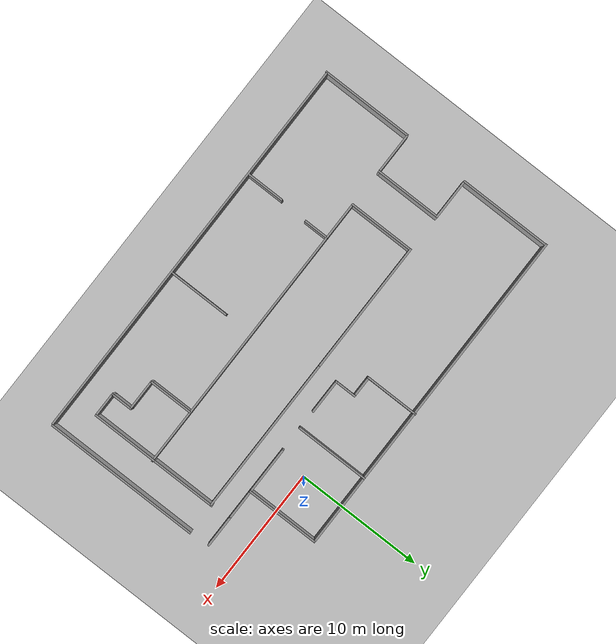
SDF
<sdf version="1.7">
 <world name="default">
  <light name="sun" type="directional">
   <pose>0 0 10 0 -0 0</pose>
   <diffuse>0.8 0.8 0.8 1</diffuse>
   <specular>0.2 0.2 0.2 1</specular>
   <attenuation>
    <range>1000</range>
    <constant>0.9</constant>
    <linear>0.01</linear>
    <quadratic>0.001</quadratic>
   </attenuation>
   <direction>-0.5 0.1 -0.9</direction>
   <spot><inner_angle>0</inner_angle><outer_angle>0</outer_angle><falloff>0</falloff></spot>
  </light>
  <model name="ground_plane">
   <static>1</static>
   <link name="link">
    <collision name="collision">
     <geometry><plane><normal>0 0 1</normal><size>100 100</size></plane></geometry>
     <surface>
      <contact><collide_bitmask>65535</collide_bitmask></contact>
      <friction><ode><mu>100</mu><mu2>50</mu2></ode></friction>
     </surface>
    </collision>
    <visual name="visual">
     <cast_shadows>0</cast_shadows>
     <geometry><plane><normal>0 0 1</normal><size>100 100</size></plane></geometry>
     <material>
      <script><uri>file://media/materials/scripts/gazebo.material</uri><name>Gazebo/Grey</name></script>
     </material>
    </visual>
   </link>
  </model>
  <gravity>0 0 -9.8</gravity>
  <magnetic_field>6e-06 2.3e-05 -4.2e-05</magnetic_field>
  <atmosphere type="adiabatic"/>
  <physics type="ode">
   <max_step_size>0.001</max_step_size>
   <real_time_factor>1</real_time_factor>
   <real_time_update_rate>1000</real_time_update_rate>
  </physics>
  <scene><ambient>0.4 0.4 0.4 1</ambient><background>0.7 0.7 0.7 1</background><shadows>1</shadows></scene>
  <spherical_coordinates>
   <surface_model>EARTH_WGS84</surface_model>
   <latitude_deg>0</latitude_deg>
   <longitude_deg>0</longitude_deg>
   <elevation>0</elevation>
   <heading_deg>0</heading_deg>
  </spherical_coordinates>
  <model name="lab_arvc">
   <pose>-7.70789 -5.91289 0 0 -0 0</pose>
   <link name="Wall_1">
    <collision name="Wall_1_Collision">
     <geometry><box><size>5.74332 0.15 2.5</size></box></geometry>
     <pose>0 0 1.25 0 -0 0</pose>
    </collision>
    <visual name="Wall_1_Visual">
     <pose>0 0 1.25 0 -0 0</pose>
     <geometry><box><size>5.74332 0.15 2.5</size></box></geometry>
     <material>
      <script><uri>file://media/materials/scripts/gazebo.material</uri><name>Gazebo/Grey</name></script>
      <ambient>1 1 1 1</ambient>
     </material>
     <meta><layer>0</layer></meta>
    </visual>
    <pose>10.6952 6.36477 0 0 -0 -1.5708</pose>
   </link>
   <link name="Wall_11">
    <collision name="Wall_11_Collision">
     <geometry><box><size>12.25 0.15 2.5</size></box></geometry>
     <pose>0 0 1.25 0 -0 0</pose>
    </collision>
    <visual name="Wall_11_Visual">
     <pose>0 0 1.25 0 -0 0</pose>
     <geometry><box><size>12.25 0.15 2.5</size></box></geometry>
     <material>
      <script><uri>file://media/materials/scripts/gazebo.material</uri><name>Gazebo/Grey</name></script>
      <ambient>1 1 1 1</ambient>
     </material>
     <meta><layer>0</layer></meta>
    </visual>
    <pose>6.99516 1.9681 0 0 -0 3.14159</pose>
   </link>
   <link name="Wall_110">
    <collision name="Wall_110_Collision">
     <geometry><box><size>2 0.15 2.5</size></box></geometry>
     <pose>0 0 1.25 0 -0 0</pose>
    </collision>
    <visual name="Wall_110_Visual">
     <pose>0 0 1.25 0 -0 0</pose>
     <geometry><box><size>2 0.15 2.5</size></box></geometry>
     <material>
      <script><uri>file://media/materials/scripts/gazebo.material</uri><name>Gazebo/Grey</name></script>
      <ambient>1 1 1 1</ambient>
     </material>
     <meta><layer>0</layer></meta>
    </visual>
    <pose>12.2028 -8.16851 0 0 -0 3.14159</pose>
   </link>
   <link name="Wall_111">
    <collision name="Wall_111_Collision">
     <geometry><box><size>1.75 0.15 2.5</size></box></geometry>
     <pose>0 0 1.25 0 -0 0</pose>
    </collision>
    <visual name="Wall_111_Visual">
     <pose>0 0 1.25 0 -0 0</pose>
     <geometry><box><size>1.75 0.15 2.5</size></box></geometry>
     <material>
      <script><uri>file://media/materials/scripts/gazebo.material</uri><name>Gazebo/Grey</name></script>
      <ambient>1 1 1 1</ambient>
     </material>
     <meta><layer>0</layer></meta>
    </visual>
    <pose>11.2778 -7.36852 0 0 -0 1.5708</pose>
   </link>
   <link name="Wall_112">
    <collision name="Wall_112_Collision">
     <geometry><box><size>2.5 0.15 2.5</size></box></geometry>
     <pose>0 0 1.25 0 -0 0</pose>
    </collision>
    <visual name="Wall_112_Visual">
     <pose>0 0 1.25 0 -0 0</pose>
     <geometry><box><size>2.5 0.15 2.5</size></box></geometry>
     <material>
      <script><uri>file://media/materials/scripts/gazebo.material</uri><name>Gazebo/Grey</name></script>
      <ambient>1 1 1 1</ambient>
     </material>
     <meta><layer>0</layer></meta>
    </visual>
    <pose>10.1028 -6.56852 0 0 -0 3.14159</pose>
   </link>
   <link name="Wall_113">
    <collision name="Wall_113_Collision">
     <geometry><box><size>3.5 0.15 2.5</size></box></geometry>
     <pose>0 0 1.25 0 -0 0</pose>
    </collision>
    <visual name="Wall_113_Visual">
     <pose>0 0 1.25 0 -0 0</pose>
     <geometry><box><size>3.5 0.15 2.5</size></box></geometry>
     <material>
      <script><uri>file://media/materials/scripts/gazebo.material</uri><name>Gazebo/Grey</name></script>
      <ambient>1 1 1 1</ambient>
     </material>
     <meta><layer>0</layer></meta>
    </visual>
    <pose>8.92783 -4.89352 0 0 -0 1.5708</pose>
   </link>
   <link name="Wall_115">
    <collision name="Wall_115_Collision">
     <geometry><box><size>5.25 0.15 2.5</size></box></geometry>
     <pose>0 0 1.25 0 -0 0</pose>
    </collision>
    <visual name="Wall_115_Visual">
     <pose>0 0 1.25 0 -0 0</pose>
     <geometry><box><size>5.25 0.15 2.5</size></box></geometry>
     <material>
      <script><uri>file://media/materials/scripts/gazebo.material</uri><name>Gazebo/Grey</name></script>
      <ambient>1 1 1 1</ambient>
     </material>
     <meta><layer>0</layer></meta>
    </visual>
    <pose>13.1278 -5.61852 0 0 -0 1.5708</pose>
   </link>
   <link name="Wall_139">
    <collision name="Wall_139_Collision">
     <geometry><box><size>5.25 0.15 2.5</size></box></geometry>
     <pose>0 0 1.25 0 -0 0</pose>
    </collision>
    <visual name="Wall_139_Visual">
     <pose>0 0 1.25 0 -0 0</pose>
     <geometry><box><size>5.25 0.15 2.5</size></box></geometry>
     <material>
      <script><uri>file://media/materials/scripts/gazebo.material</uri><name>Gazebo/Grey</name></script>
      <ambient>1 1 1 1</ambient>
     </material>
     <meta><layer>0</layer></meta>
    </visual>
    <pose>13.1278 -0.518516 0 0 -0 1.5708</pose>
   </link>
   <link name="Wall_148">
    <collision name="Wall_148_Collision">
     <geometry><box><size>31 0.15 2.5</size></box></geometry>
     <pose>0 0 1.25 0 -0 0</pose>
    </collision>
    <visual name="Wall_148_Visual">
     <pose>0 0 1.25 0 -0 0</pose>
     <geometry><box><size>31 0.15 2.5</size></box></geometry>
     <material>
      <script><uri>file://media/materials/scripts/gazebo.material</uri><name>Gazebo/Grey</name></script>
      <ambient>1 1 1 1</ambient>
     </material>
     <meta><layer>0</layer></meta>
    </visual>
    <pose>-0.018124 -10.1766 0 0 -0 3.14159</pose>
   </link>
   <link name="Wall_15">
    <collision name="Wall_15_Collision">
     <geometry><box><size>2.75 0.15 2.5</size></box></geometry>
     <pose>0 0 1.25 0 -0 0</pose>
    </collision>
    <visual name="Wall_15_Visual">
     <pose>0 0 1.25 0 -0 0</pose>
     <geometry><box><size>2.75 0.15 2.5</size></box></geometry>
     <material>
      <script><uri>file://media/materials/scripts/gazebo.material</uri><name>Gazebo/Grey</name></script>
      <ambient>1 1 1 1</ambient>
     </material>
     <meta><layer>0</layer></meta>
    </visual>
    <pose>2.29516 3.5681 0 0 -0 0</pose>
   </link>
   <link name="Wall_150">
    <collision name="Wall_150_Collision">
     <geometry><box><size>2.5 0.15 2.5</size></box></geometry>
     <pose>0 0 1.25 0 -0 0</pose>
    </collision>
    <visual name="Wall_150_Visual">
     <pose>0 0 1.25 0 -0 0</pose>
     <geometry><box><size>2.5 0.15 2.5</size></box></geometry>
     <material>
      <script><uri>file://media/materials/scripts/gazebo.material</uri><name>Gazebo/Grey</name></script>
      <ambient>1 1 1 1</ambient>
     </material>
     <meta><layer>0</layer></meta>
    </visual>
    <pose>14.2202 3.5681 0 0 -0 0</pose>
   </link>
   <link name="Wall_152">
    <collision name="Wall_152_Collision">
     <geometry><box><size>12.25 0.15 2.5</size></box></geometry>
     <pose>0 0 1.25 0 -0 0</pose>
    </collision>
    <visual name="Wall_152_Visual">
     <pose>0 0 1.25 0 -0 0</pose>
     <geometry><box><size>12.25 0.15 2.5</size></box></geometry>
     <material>
      <script><uri>file://media/materials/scripts/gazebo.material</uri><name>Gazebo/Grey</name></script>
      <ambient>1 1 1 1</ambient>
     </material>
     <meta><layer>0</layer></meta>
    </visual>
    <pose>15.5392 -4.05187 0 0 -0 -1.5708</pose>
   </link>
   <link name="Wall_156">
    <collision name="Wall_156_Collision">
     <geometry><box><size>3 0.15 2.5</size></box></geometry>
     <pose>0 0 1.25 0 -0 0</pose>
    </collision>
    <visual name="Wall_156_Visual">
     <pose>0 0 1.25 0 -0 0</pose>
     <geometry><box><size>3 0.15 2.5</size></box></geometry>
     <material>
      <script><uri>file://media/materials/scripts/gazebo.material</uri><name>Gazebo/Grey</name></script>
      <ambient>1 1 1 1</ambient>
     </material>
     <meta><layer>0</layer></meta>
    </visual>
    <pose>-6.62361 -8.67568 0 0 -0 -1.5708</pose>
   </link>
   <link name="Wall_160">
    <collision name="Wall_160_Collision">
     <geometry><box><size>4.75 0.15 2.5</size></box></geometry>
     <pose>0 0 1.25 0 -0 0</pose>
    </collision>
    <visual name="Wall_160_Visual">
     <pose>0 0 1.25 0 -0 0</pose>
     <geometry><box><size>4.75 0.15 2.5</size></box></geometry>
     <material>
      <script><uri>file://media/materials/scripts/gazebo.material</uri><name>Gazebo/Grey</name></script>
      <ambient>1 1 1 1</ambient>
     </material>
     <meta><layer>0</layer></meta>
    </visual>
    <pose>2.05182 -7.71262 0 0 -0 -1.5708</pose>
   </link>
   <link name="Wall_164">
    <collision name="Wall_164_Collision">
     <geometry><box><size>2 0.15 2.5</size></box></geometry>
     <pose>0 0 1.25 0 -0 0</pose>
    </collision>
    <visual name="Wall_164_Visual">
     <pose>0 0 1.25 0 -0 0</pose>
     <geometry><box><size>2 0.15 2.5</size></box></geometry>
     <material>
      <script><uri>file://media/materials/scripts/gazebo.material</uri><name>Gazebo/Grey</name></script>
      <ambient>1 1 1 1</ambient>
     </material>
     <meta><layer>0</layer></meta>
    </visual>
    <pose>-6.48749 -4.05896 0 0 -0 1.5708</pose>
   </link>
   <link name="Wall_17">
    <collision name="Wall_17_Collision">
     <geometry><box><size>1.75 0.15 2.5</size></box></geometry>
     <pose>0 0 1.25 0 -0 0</pose>
    </collision>
    <visual name="Wall_17_Visual">
     <pose>0 0 1.25 0 -0 0</pose>
     <geometry><box><size>1.75 0.15 2.5</size></box></geometry>
     <material>
      <script><uri>file://media/materials/scripts/gazebo.material</uri><name>Gazebo/Grey</name></script>
      <ambient>1 1 1 1</ambient>
     </material>
     <meta><layer>0</layer></meta>
    </visual>
    <pose>0.995162 4.3681 0 0 -0 1.5708</pose>
   </link>
   <link name="Wall_18">
    <collision name="Wall_18_Collision">
     <geometry><box><size>1.75 0.15 2.5</size></box></geometry>
     <pose>0 0 1.25 0 -0 0</pose>
    </collision>
    <visual name="Wall_18_Visual">
     <pose>0 0 1.25 0 -0 0</pose>
     <geometry><box><size>1.75 0.15 2.5</size></box></geometry>
     <material>
      <script><uri>file://media/materials/scripts/gazebo.material</uri><name>Gazebo/Grey</name></script>
      <ambient>1 1 1 1</ambient>
     </material>
     <meta><layer>0</layer></meta>
    </visual>
    <pose>0.195162 5.1681 0 0 -0 3.14159</pose>
   </link>
   <link name="Wall_3">
    <collision name="Wall_3_Collision">
     <geometry><box><size>5.79652 0.15 2.5</size></box></geometry>
     <pose>0 0 1.25 0 -0 0</pose>
    </collision>
    <visual name="Wall_3_Visual">
     <pose>0 0 1.25 0 -0 0</pose>
     <geometry><box><size>5.79652 0.15 2.5</size></box></geometry>
     <material>
      <script><uri>file://media/materials/scripts/gazebo.material</uri><name>Gazebo/Grey</name></script>
      <ambient>1 1 1 1</ambient>
     </material>
     <meta><layer>0</layer></meta>
    </visual>
    <pose>5.09516 6.39137 0 0 -0 1.5708</pose>
   </link>
   <link name="Wall_31">
    <collision name="Wall_31_Collision">
     <geometry><box><size>5.75 0.15 2.5</size></box></geometry>
     <pose>0 0 1.25 0 -0 0</pose>
    </collision>
    <visual name="Wall_31_Visual">
     <pose>0 0 1.25 0 -0 0</pose>
     <geometry><box><size>5.75 0.15 2.5</size></box></geometry>
     <material>
      <script><uri>file://media/materials/scripts/gazebo.material</uri><name>Gazebo/Grey</name></script>
      <ambient>1 1 1 1</ambient>
     </material>
     <meta><layer>0</layer></meta>
    </visual>
    <pose>2.29516 9.21463 0 0 -0 3.14159</pose>
   </link>
   <link name="Wall_33">
    <collision name="Wall_33_Collision">
     <geometry><box><size>5.75 0.15 2.5</size></box></geometry>
     <pose>0 0 1.25 0 -0 0</pose>
    </collision>
    <visual name="Wall_33_Visual">
     <pose>0 0 1.25 0 -0 0</pose>
     <geometry><box><size>5.75 0.15 2.5</size></box></geometry>
     <material>
      <script><uri>file://media/materials/scripts/gazebo.material</uri><name>Gazebo/Grey</name></script>
      <ambient>1 1 1 1</ambient>
     </material>
     <meta><layer>0</layer></meta>
    </visual>
    <pose>7.89516 9.21463 0 0 -0 0</pose>
   </link>
   <link name="Wall_37">
    <collision name="Wall_37_Collision">
     <geometry><box><size>4.25 0.15 2.5</size></box></geometry>
     <pose>0 0 1.25 0 -0 0</pose>
    </collision>
    <visual name="Wall_37_Visual">
     <pose>0 0 1.25 0 -0 0</pose>
     <geometry><box><size>4.25 0.15 2.5</size></box></geometry>
     <material>
      <script><uri>file://media/materials/scripts/gazebo.material</uri><name>Gazebo/Grey</name></script>
      <ambient>1 1 1 1</ambient>
     </material>
     <meta><layer>0</layer></meta>
    </visual>
    <pose>-0.604838 7.2181 0 0 -0 1.5708</pose>
   </link>
   <link name="Wall_40">
    <collision name="Wall_40_Collision">
     <geometry><box><size>15 0.15 2.5</size></box></geometry>
     <pose>0 0 1.25 0 -0 0</pose>
    </collision>
    <visual name="Wall_40_Visual">
     <pose>0 0 1.25 0 -0 0</pose>
     <geometry><box><size>15 0.15 2.5</size></box></geometry>
     <material>
      <script><uri>file://media/materials/scripts/gazebo.material</uri><name>Gazebo/Grey</name></script>
      <ambient>1 1 1 1</ambient>
     </material>
     <meta><layer>0</layer></meta>
    </visual>
    <pose>-8.05974 9.19873 0 0 -0 0</pose>
   </link>
   <link name="Wall_5">
    <collision name="Wall_5_Collision">
     <geometry><box><size>3.75 0.15 2.5</size></box></geometry>
     <pose>0 0 1.25 0 -0 0</pose>
    </collision>
    <visual name="Wall_5_Visual">
     <pose>0 0 1.25 0 -0 0</pose>
     <geometry><box><size>3.75 0.15 2.5</size></box></geometry>
     <material>
      <script><uri>file://media/materials/scripts/gazebo.material</uri><name>Gazebo/Grey</name></script>
      <ambient>1 1 1 1</ambient>
     </material>
     <meta><layer>0</layer></meta>
    </visual>
    <pose>8.89516 3.5681 0 0 -0 3.14159</pose>
   </link>
   <link name="Wall_50">
    <collision name="Wall_50_Collision">
     <geometry><box><size>10.5 0.15 2.5</size></box></geometry>
     <pose>0 0 1.25 0 -0 0</pose>
    </collision>
    <visual name="Wall_50_Visual">
     <pose>0 0 1.25 0 -0 0</pose>
     <geometry><box><size>10.5 0.15 2.5</size></box></geometry>
     <material>
      <script><uri>file://media/materials/scripts/gazebo.material</uri><name>Gazebo/Grey</name></script>
      <ambient>1 1 1 1</ambient>
     </material>
     <meta><layer>0</layer></meta>
    </visual>
    <pose>-4.22984 1.9681 0 0 -0 3.14159</pose>
   </link>
   <link name="Wall_56">
    <collision name="Wall_56_Collision">
     <geometry><box><size>7.25 0.15 2.5</size></box></geometry>
     <pose>0 0 1.25 0 -0 0</pose>
    </collision>
    <visual name="Wall_56_Visual">
     <pose>0 0 1.25 0 -0 0</pose>
     <geometry><box><size>7.25 0.15 2.5</size></box></geometry>
     <material>
      <script><uri>file://media/materials/scripts/gazebo.material</uri><name>Gazebo/Grey</name></script>
      <ambient>1 1 1 1</ambient>
     </material>
     <meta><layer>0</layer></meta>
    </visual>
    <pose>-15.4552 5.56168 0 0 -0 1.5708</pose>
   </link>
   <link name="Wall_64">
    <collision name="Wall_64_Collision">
     <geometry><box><size>3.25 0.15 2.5</size></box></geometry>
     <pose>0 0 1.25 0 -0 0</pose>
    </collision>
    <visual name="Wall_64_Visual">
     <pose>0 0 1.25 0 -0 0</pose>
     <geometry><box><size>3.25 0.15 2.5</size></box></geometry>
     <material>
      <script><uri>file://media/materials/scripts/gazebo.material</uri><name>Gazebo/Grey</name></script>
      <ambient>1 1 1 1</ambient>
     </material>
     <meta><layer>0</layer></meta>
    </visual>
    <pose>-13.9052 2.01168 0 0 -0 0</pose>
   </link>
   <link name="Wall_7">
    <collision name="Wall_7_Collision">
     <geometry><box><size>2.5 0.15 2.5</size></box></geometry>
     <pose>0 0 1.25 0 -0 0</pose>
    </collision>
    <visual name="Wall_7_Visual">
     <pose>0 0 1.25 0 -0 0</pose>
     <geometry><box><size>2.5 0.15 2.5</size></box></geometry>
     <material>
      <script><uri>file://media/materials/scripts/gazebo.material</uri><name>Gazebo/Grey</name></script>
      <ambient>1 1 1 1</ambient>
     </material>
     <meta><layer>0</layer></meta>
    </visual>
    <pose>11.8702 3.5681 0 0 -0 0</pose>
   </link>
   <link name="Wall_81">
    <collision name="Wall_81_Collision">
     <geometry><box><size>5.25 0.15 2.5</size></box></geometry>
     <pose>0 0 1.25 0 -0 0</pose>
    </collision>
    <visual name="Wall_81_Visual">
     <pose>0 0 1.25 0 -0 0</pose>
     <geometry><box><size>5.25 0.15 2.5</size></box></geometry>
     <material>
      <script><uri>file://media/materials/scripts/gazebo.material</uri><name>Gazebo/Grey</name></script>
      <ambient>1 1 1 1</ambient>
     </material>
     <meta><layer>0</layer></meta>
    </visual>
    <pose>-12.3552 -0.538324 0 0 -0 -1.5708</pose>
   </link>
   <link name="Wall_83">
    <collision name="Wall_83_Collision">
     <geometry><box><size>5.25 0.15 2.5</size></box></geometry>
     <pose>0 0 1.25 0 -0 0</pose>
    </collision>
    <visual name="Wall_83_Visual">
     <pose>0 0 1.25 0 -0 0</pose>
     <geometry><box><size>5.25 0.15 2.5</size></box></geometry>
     <material>
      <script><uri>file://media/materials/scripts/gazebo.material</uri><name>Gazebo/Grey</name></script>
      <ambient>1 1 1 1</ambient>
     </material>
     <meta><layer>0</layer></meta>
    </visual>
    <pose>-9.40484 -0.581897 0 0 -0 -1.5708</pose>
   </link>
   <link name="Wall_85">
    <collision name="Wall_85_Collision">
     <geometry><box><size>3.25 0.15 2.5</size></box></geometry>
     <pose>0 0 1.25 0 -0 0</pose>
    </collision>
    <visual name="Wall_85_Visual">
     <pose>0 0 1.25 0 -0 0</pose>
     <geometry><box><size>3.25 0.15 2.5</size></box></geometry>
     <material>
      <script><uri>file://media/materials/scripts/gazebo.material</uri><name>Gazebo/Grey</name></script>
      <ambient>1 1 1 1</ambient>
     </material>
     <meta><layer>0</layer></meta>
    </visual>
    <pose>-13.9052 -3.08833 0 0 -0 3.14159</pose>
   </link>
   <link name="Wall_89">
    <collision name="Wall_89_Collision">
     <geometry><box><size>22.75 0.15 2.5</size></box></geometry>
     <pose>0 0 1.25 0 -0 0</pose>
    </collision>
    <visual name="Wall_89_Visual">
     <pose>0 0 1.25 0 -0 0</pose>
     <geometry><box><size>22.75 0.15 2.5</size></box></geometry>
     <material>
      <script><uri>file://media/materials/scripts/gazebo.material</uri><name>Gazebo/Grey</name></script>
      <ambient>1 1 1 1</ambient>
     </material>
     <meta><layer>0</layer></meta>
    </visual>
    <pose>1.89516 -3.1319 0 0 -0 0</pose>
   </link>
   <link name="Wall_95">
    <collision name="Wall_95_Collision">
     <geometry><box><size>7.25 0.15 2.5</size></box></geometry>
     <pose>0 0 1.25 0 -0 0</pose>
    </collision>
    <visual name="Wall_95_Visual">
     <pose>0 0 1.25 0 -0 0</pose>
     <geometry><box><size>7.25 0.15 2.5</size></box></geometry>
     <material>
      <script><uri>file://media/materials/scripts/gazebo.material</uri><name>Gazebo/Grey</name></script>
      <ambient>1 1 1 1</ambient>
     </material>
     <meta><layer>0</layer></meta>
    </visual>
    <pose>-15.5392 -6.67747 0 0 -0 1.5708</pose>
   </link>
   <static>1</static>
  </model>
 </world>
</sdf>
